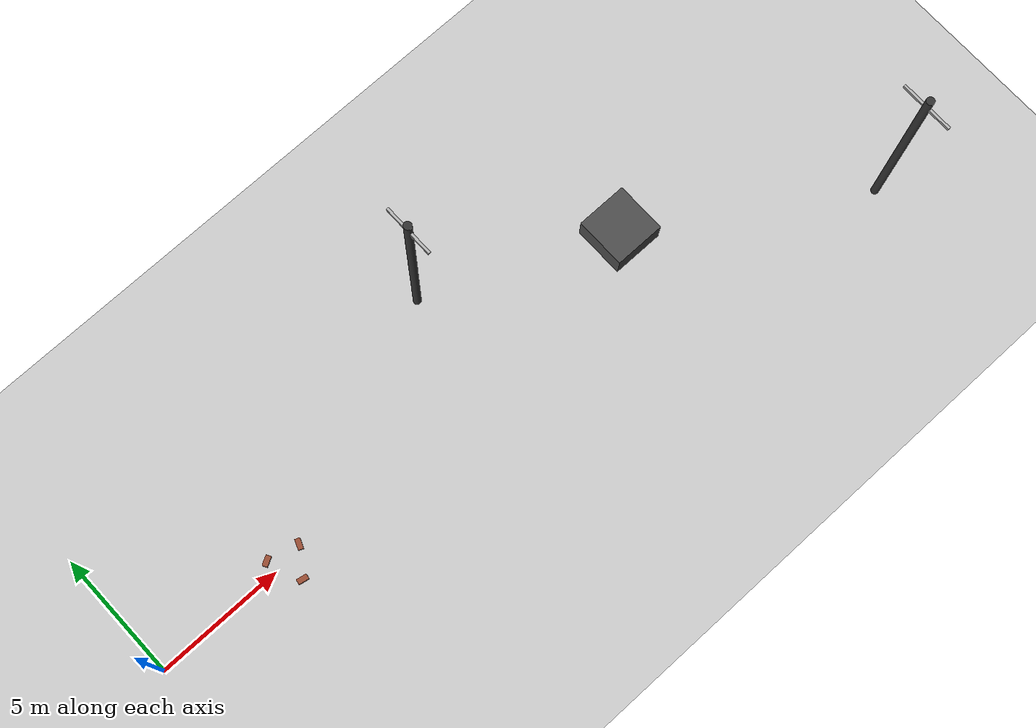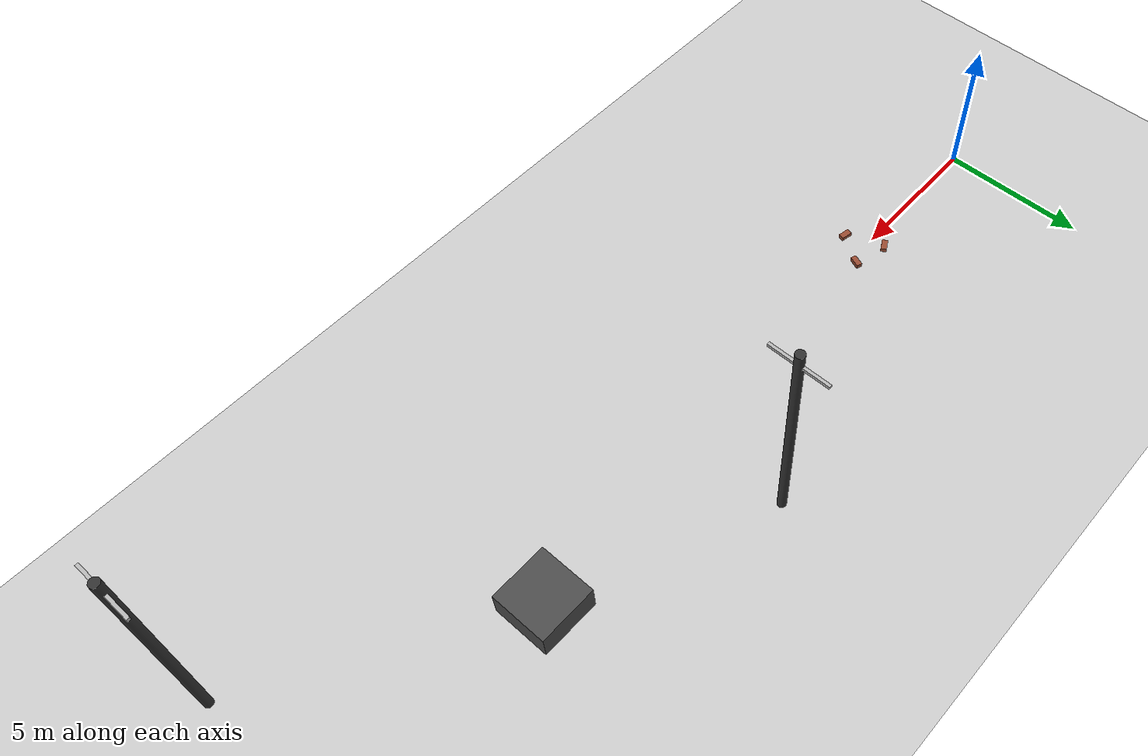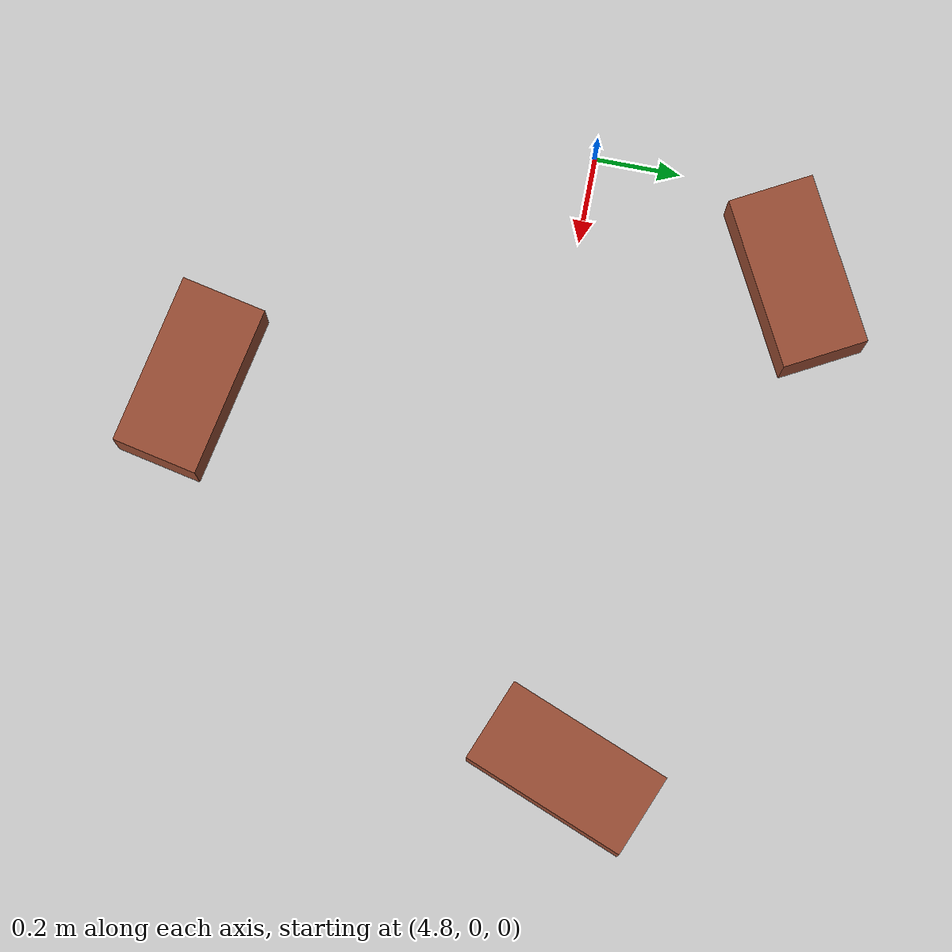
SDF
<?xml version="1.0" ?>
<sdf version="1.9">
  <world name="tactical_test_world">

    <!-- PHYSICS & CORE SYSTEMS -->
    <physics name="1ms" type="ode">
      <max_step_size>0.001</max_step_size>
      <real_time_factor>1.0</real_time_factor>
    </physics>

    <plugin filename="gz-sim-physics-system" name="gz::sim::systems::Physics" />
    <plugin filename="gz-sim-user-commands-system" name="gz::sim::systems::UserCommands" />
    <plugin filename="gz-sim-scene-broadcaster-system" name="gz::sim::systems::SceneBroadcaster" />
    <plugin filename="gz-sim-sensors-system" name="gz::sim::systems::Sensors"><render_engine>ogre2</render_engine></plugin>
    <plugin filename="gz-sim-imu-system" name="gz::sim::systems::Imu" />
    <plugin filename="gz-sim-navsat-system" name="gz::sim::systems::NavSat" />

    <scene><ambient>0.4 0.4 0.4 1</ambient><background>0.7 0.7 0.7 1</background><shadows>true</shadows></scene>
    <light type="directional" name="sun"><cast_shadows>true</cast_shadows><pose>0 0 10 0 0 0</pose><diffuse>0.8 0.8 0.8 1</diffuse><specular>0.2 0.2 0.2 1</specular><direction>-0.5 0.1 -0.9</direction></light>

    <model name="ground_plane">
      <static>true</static>
      <link name="link">
        <collision name="collision"><geometry><plane><normal>0 0 1</normal><size>200 200</size></plane></geometry></collision>
        <visual name="visual"><geometry><plane><normal>0 0 1</normal><size>200 200</size></plane></geometry><material><ambient>0.8 0.8 0.8 1</ambient><diffuse>0.8 0.8 0.8 1</diffuse></material></visual>
      </link>
    </model>

    <!-- 1. THE BRICK FIELD (15cm height)           -->
    <!-- These test low-profile obstacle detection -->
    <model name="brick_1">
      <pose>5.0 0.5 0.075 0 0 0.5</pose>
      <static>true</static>
      <link name="link">
        <collision name="c"><geometry><box><size>0.4 0.2 0.15</size></box></geometry></collision>
        <visual name="v"><geometry><box><size>0.4 0.2 0.15</size></box></geometry><material><ambient>0.6 0.3 0.2 1</ambient></material></visual>
      </link>
    </model>

    <model name="brick_2">
      <pose>5.5 -0.8 0.075 0 0 -0.2</pose>
      <static>true</static>
      <link name="link">
        <collision name="c"><geometry><box><size>0.4 0.2 0.15</size></box></geometry></collision>
        <visual name="v"><geometry><box><size>0.4 0.2 0.15</size></box></geometry><material><ambient>0.6 0.3 0.2 1</ambient></material></visual>
      </link>
    </model>

    <model name="brick_3">
      <pose>6.2 0.2 0.075 0 0 1.2</pose>
      <static>true</static>
      <link name="link">
        <collision name="c"><geometry><box><size>0.4 0.2 0.15</size></box></geometry></collision>
        <visual name="v"><geometry><box><size>0.4 0.2 0.15</size></box></geometry><material><ambient>0.6 0.3 0.2 1</ambient></material></visual>
      </link>
    </model>

    <!-- 2. THE TALL ELECTRIC POLES (8m height)     -->
    <model name="electric_pole_1">
      <pose>15.0 4.0 4.0 0 0 0</pose>
      <static>true</static>
      <link name="pole">
        <collision name="c"><geometry><cylinder><radius>0.15</radius><length>8.0</length></cylinder></geometry></collision>
        <visual name="v"><geometry><cylinder><radius>0.15</radius><length>8.0</length></cylinder></geometry><material><ambient>0.2 0.2 0.2 1</ambient></material></visual>
        <!-- The Cross-Arm -->
        <visual name="arm"><pose>0 0 3.5 0 1.57 0</pose><geometry><box><size>0.1 2.0 0.1</size></box></geometry></visual>
      </link>
    </model>

    <model name="electric_pole_2">
      <pose>30.0 -4.0 4.0 0 0 0</pose>
      <static>true</static>
      <link name="pole">
        <collision name="c"><geometry><cylinder><radius>0.15</radius><length>8.0</length></cylinder></geometry></collision>
        <visual name="v"><geometry><cylinder><radius>0.15</radius><length>8.0</length></cylinder></geometry><material><ambient>0.2 0.2 0.2 1</ambient></material></visual>
        <visual name="arm"><pose>0 0 3.5 0 1.57 0</pose><geometry><box><size>0.1 2.0 0.1</size></box></geometry></visual>
      </link>
    </model>

    <!-- 3. CONCRETE BLOCKS (The Slalom)            -->
    <model name="block_large_1">
      <pose>22.0 1.0 0.5 0 0 0</pose>
      <static>true</static>
      <link name="link">
        <collision name="c"><geometry><box><size>2 2 1</size></box></geometry></collision>
        <visual name="v"><geometry><box><size>2 2 1</size></box></geometry><material><ambient>0.3 0.3 0.3 1</ambient></material></visual>
      </link>
    </model>

  </world>
</sdf>
